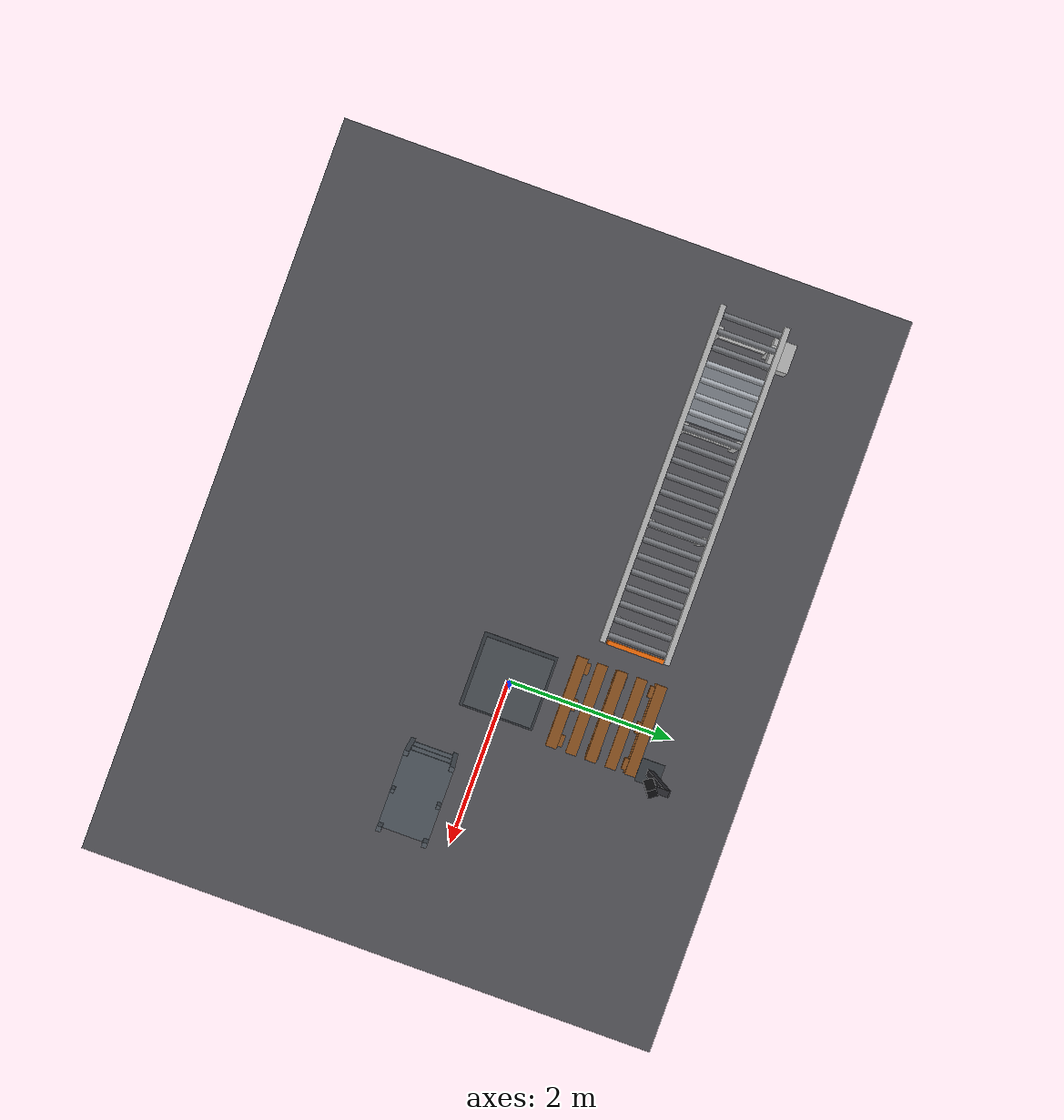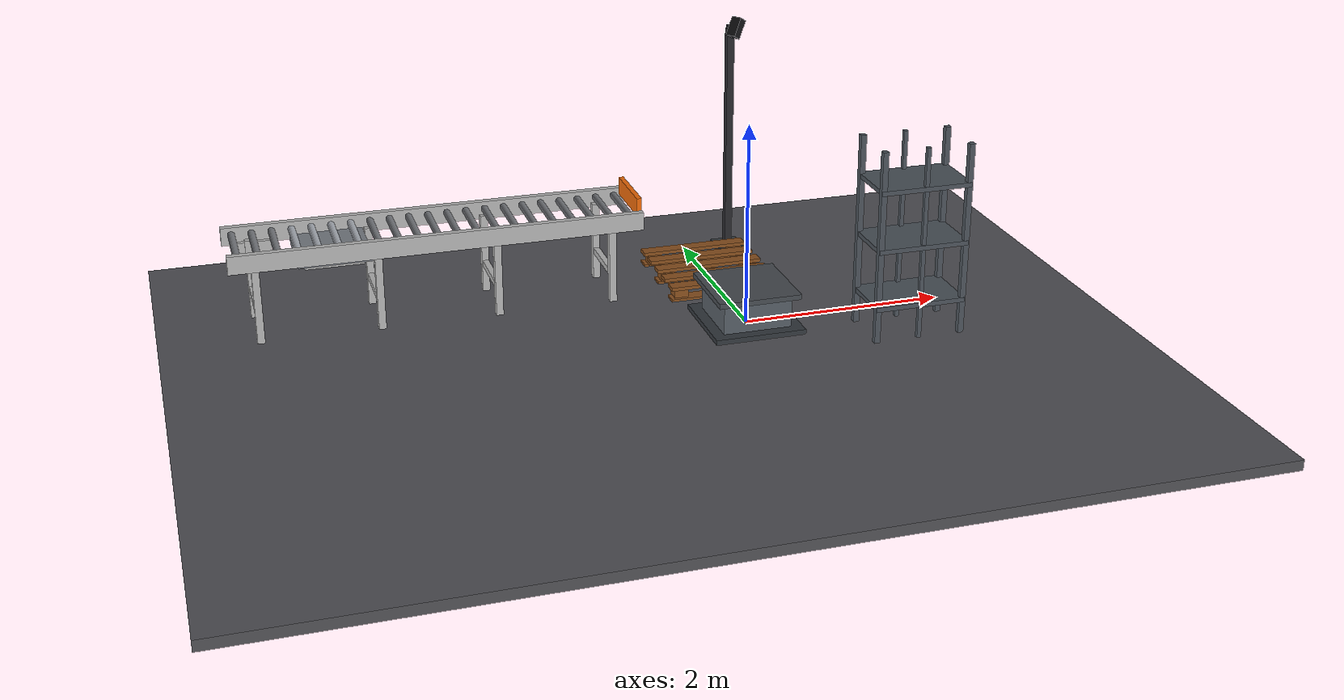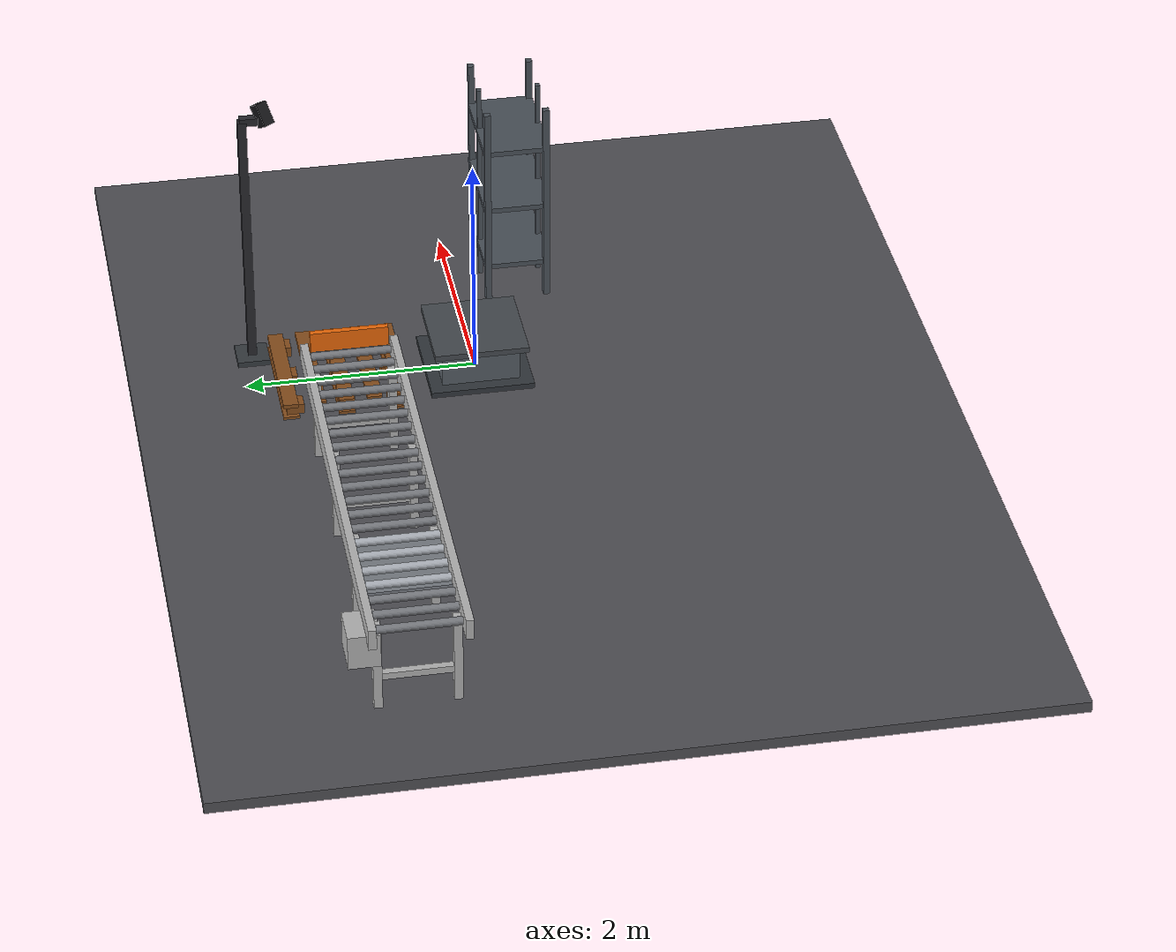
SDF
<?xml version="1.0"?>
<sdf version="1.8">
  <world name="ahead_workcell_v3_8_camera_pole">
    <plugin filename="ignition-gazebo-physics-system" name="ignition::gazebo::systems::Physics"/>
    <plugin filename="ignition-gazebo-user-commands-system" name="ignition::gazebo::systems::UserCommands"/>
    <plugin filename="ignition-gazebo-scene-broadcaster-system" name="ignition::gazebo::systems::SceneBroadcaster"/>
    <plugin filename="ignition-gazebo-sensors-system" name="ignition::gazebo::systems::Sensors"><render_engine>ogre2</render_engine></plugin>
    <gravity>0 0 -9.80665</gravity>
    <physics name="default_physics" type="ignored"><max_step_size>0.001</max_step_size><real_time_factor>1.0</real_time_factor></physics>
    <light type="directional" name="sun"><pose>0 0 8 0 0 0</pose><diffuse>0.8 0.8 0.8 1</diffuse><direction>-0.4 0.3 -1</direction></light>

    <model name="floor">
      <static>true</static>
      <link name="floor_link">
        <collision name="collision">
          <pose>-1.0 -0.5 -0.05 0 0 0</pose>
          <geometry><box><size>9.0 7.0 0.10</size></box></geometry>
        </collision>
        <visual name="visual">
          <pose>-1.0 -0.5 -0.05 0 0 0</pose>
          <geometry><box><size>9.0 7.0 0.10</size></box></geometry>
          <material>
            <ambient>0.22 0.22 0.23 1</ambient>
            <diffuse>0.32 0.32 0.34 1</diffuse>
          </material>
        </visual>
      </link>
    </model>

    <model name="conveyor_main">
      <static>true</static>

      <link name="conveyor_link">

        <collision name="collision">
          <pose>-2.80 1.20 0.75 0 0 0</pose>
          <geometry>
            <box><size>3.90 0.80 0.20</size></box>
          </geometry>

          <surface>
            <friction>
              <ode>
                <mu>0.7</mu>
                <mu2>150</mu2>
                <fdir1>0 1 0</fdir1>
              </ode>
            </friction>
          </surface>
        </collision>

        <visual name="rail_left">
          <pose>-2.80 0.82 0.84 0 0 0</pose>
          <geometry>
            <box><size>4.00 0.065 0.18</size></box>
          </geometry>
        </visual>

        <visual name="rail_right">
          <pose>-2.80 1.58 0.84 0 0 0</pose>
          <geometry>
            <box><size>4.00 0.065 0.18</size></box>
          </geometry>
        </visual>

      <visual name="roller_00">
        <pose>-4.700 1.20 0.86 1.57079632679 0 0</pose>
        <geometry>
          <cylinder>
            <radius>0.035</radius>
            <length>0.68</length>
          </cylinder>
        </geometry>
        <material>
          <ambient>0.28 0.29 0.31 1</ambient>
          <diffuse>0.47 0.48 0.50 1</diffuse>
        </material>
      </visual>

      <visual name="roller_01">
        <pose>-4.510 1.20 0.86 1.57079632679 0 0</pose>
        <geometry>
          <cylinder>
            <radius>0.035</radius>
            <length>0.68</length>
          </cylinder>
        </geometry>
        <material>
          <ambient>0.28 0.29 0.31 1</ambient>
          <diffuse>0.47 0.48 0.50 1</diffuse>
        </material>
      </visual>

      <visual name="roller_02">
        <pose>-4.320 1.20 0.86 1.57079632679 0 0</pose>
        <geometry>
          <cylinder>
            <radius>0.035</radius>
            <length>0.68</length>
          </cylinder>
        </geometry>
        <material>
          <ambient>0.28 0.29 0.31 1</ambient>
          <diffuse>0.47 0.48 0.50 1</diffuse>
        </material>
      </visual>

      <visual name="roller_03">
        <pose>-4.130 1.20 0.86 1.57079632679 0 0</pose>
        <geometry>
          <cylinder>
            <radius>0.035</radius>
            <length>0.68</length>
          </cylinder>
        </geometry>
        <material>
          <ambient>0.42 0.44 0.46 1</ambient>
          <diffuse>0.67 0.69 0.72 1</diffuse>
        </material>
      </visual>

      <visual name="roller_04">
        <pose>-3.940 1.20 0.86 1.57079632679 0 0</pose>
        <geometry>
          <cylinder>
            <radius>0.035</radius>
            <length>0.68</length>
          </cylinder>
        </geometry>
        <material>
          <ambient>0.42 0.44 0.46 1</ambient>
          <diffuse>0.67 0.69 0.72 1</diffuse>
        </material>
      </visual>

      <visual name="roller_05">
        <pose>-3.750 1.20 0.86 1.57079632679 0 0</pose>
        <geometry>
          <cylinder>
            <radius>0.035</radius>
            <length>0.68</length>
          </cylinder>
        </geometry>
        <material>
          <ambient>0.42 0.44 0.46 1</ambient>
          <diffuse>0.67 0.69 0.72 1</diffuse>
        </material>
      </visual>

      <visual name="roller_06">
        <pose>-3.560 1.20 0.86 1.57079632679 0 0</pose>
        <geometry>
          <cylinder>
            <radius>0.035</radius>
            <length>0.68</length>
          </cylinder>
        </geometry>
        <material>
          <ambient>0.42 0.44 0.46 1</ambient>
          <diffuse>0.67 0.69 0.72 1</diffuse>
        </material>
      </visual>

      <visual name="roller_07">
        <pose>-3.370 1.20 0.86 1.57079632679 0 0</pose>
        <geometry>
          <cylinder>
            <radius>0.035</radius>
            <length>0.68</length>
          </cylinder>
        </geometry>
        <material>
          <ambient>0.28 0.29 0.31 1</ambient>
          <diffuse>0.47 0.48 0.50 1</diffuse>
        </material>
      </visual>

      <visual name="roller_08">
        <pose>-3.180 1.20 0.86 1.57079632679 0 0</pose>
        <geometry>
          <cylinder>
            <radius>0.035</radius>
            <length>0.68</length>
          </cylinder>
        </geometry>
        <material>
          <ambient>0.28 0.29 0.31 1</ambient>
          <diffuse>0.47 0.48 0.50 1</diffuse>
        </material>
      </visual>

      <visual name="roller_09">
        <pose>-2.990 1.20 0.86 1.57079632679 0 0</pose>
        <geometry>
          <cylinder>
            <radius>0.035</radius>
            <length>0.68</length>
          </cylinder>
        </geometry>
        <material>
          <ambient>0.28 0.29 0.31 1</ambient>
          <diffuse>0.47 0.48 0.50 1</diffuse>
        </material>
      </visual>

      <visual name="roller_10">
        <pose>-2.800 1.20 0.86 1.57079632679 0 0</pose>
        <geometry>
          <cylinder>
            <radius>0.035</radius>
            <length>0.68</length>
          </cylinder>
        </geometry>
        <material>
          <ambient>0.28 0.29 0.31 1</ambient>
          <diffuse>0.47 0.48 0.50 1</diffuse>
        </material>
      </visual>

      <visual name="roller_11">
        <pose>-2.610 1.20 0.86 1.57079632679 0 0</pose>
        <geometry>
          <cylinder>
            <radius>0.035</radius>
            <length>0.68</length>
          </cylinder>
        </geometry>
        <material>
          <ambient>0.28 0.29 0.31 1</ambient>
          <diffuse>0.47 0.48 0.50 1</diffuse>
        </material>
      </visual>

      <visual name="roller_12">
        <pose>-2.420 1.20 0.86 1.57079632679 0 0</pose>
        <geometry>
          <cylinder>
            <radius>0.035</radius>
            <length>0.68</length>
          </cylinder>
        </geometry>
        <material>
          <ambient>0.28 0.29 0.31 1</ambient>
          <diffuse>0.47 0.48 0.50 1</diffuse>
        </material>
      </visual>

      <visual name="roller_13">
        <pose>-2.230 1.20 0.86 1.57079632679 0 0</pose>
        <geometry>
          <cylinder>
            <radius>0.035</radius>
            <length>0.68</length>
          </cylinder>
        </geometry>
        <material>
          <ambient>0.28 0.29 0.31 1</ambient>
          <diffuse>0.47 0.48 0.50 1</diffuse>
        </material>
      </visual>

      <visual name="roller_14">
        <pose>-2.040 1.20 0.86 1.57079632679 0 0</pose>
        <geometry>
          <cylinder>
            <radius>0.035</radius>
            <length>0.68</length>
          </cylinder>
        </geometry>
        <material>
          <ambient>0.28 0.29 0.31 1</ambient>
          <diffuse>0.47 0.48 0.50 1</diffuse>
        </material>
      </visual>

      <visual name="roller_15">
        <pose>-1.850 1.20 0.86 1.57079632679 0 0</pose>
        <geometry>
          <cylinder>
            <radius>0.035</radius>
            <length>0.68</length>
          </cylinder>
        </geometry>
        <material>
          <ambient>0.28 0.29 0.31 1</ambient>
          <diffuse>0.47 0.48 0.50 1</diffuse>
        </material>
      </visual>

      <visual name="roller_16">
        <pose>-1.660 1.20 0.86 1.57079632679 0 0</pose>
        <geometry>
          <cylinder>
            <radius>0.035</radius>
            <length>0.68</length>
          </cylinder>
        </geometry>
        <material>
          <ambient>0.28 0.29 0.31 1</ambient>
          <diffuse>0.47 0.48 0.50 1</diffuse>
        </material>
      </visual>

      <visual name="roller_17">
        <pose>-1.470 1.20 0.86 1.57079632679 0 0</pose>
        <geometry>
          <cylinder>
            <radius>0.035</radius>
            <length>0.68</length>
          </cylinder>
        </geometry>
        <material>
          <ambient>0.28 0.29 0.31 1</ambient>
          <diffuse>0.47 0.48 0.50 1</diffuse>
        </material>
      </visual>

      <visual name="roller_18">
        <pose>-1.280 1.20 0.86 1.57079632679 0 0</pose>
        <geometry>
          <cylinder>
            <radius>0.035</radius>
            <length>0.68</length>
          </cylinder>
        </geometry>
        <material>
          <ambient>0.28 0.29 0.31 1</ambient>
          <diffuse>0.47 0.48 0.50 1</diffuse>
        </material>
      </visual>

      <visual name="roller_19">
        <pose>-1.090 1.20 0.86 1.57079632679 0 0</pose>
        <geometry>
          <cylinder>
            <radius>0.035</radius>
            <length>0.68</length>
          </cylinder>
        </geometry>
        <material>
          <ambient>0.28 0.29 0.31 1</ambient>
          <diffuse>0.47 0.48 0.50 1</diffuse>
        </material>
      </visual>

      <visual name="roller_20">
        <pose>-0.900 1.20 0.86 1.57079632679 0 0</pose>
        <geometry>
          <cylinder>
            <radius>0.035</radius>
            <length>0.68</length>
          </cylinder>
        </geometry>
        <material>
          <ambient>0.28 0.29 0.31 1</ambient>
          <diffuse>0.47 0.48 0.50 1</diffuse>
        </material>
      </visual>

      <visual name="leg_l_0">
        <pose>-4.55 0.88 0.40 0 0 0</pose>
        <geometry>
          <box><size>0.07 0.07 0.80</size></box>
        </geometry>
      </visual>

      <visual name="leg_r_0">
        <pose>-4.55 1.52 0.40 0 0 0</pose>
        <geometry>
          <box><size>0.07 0.07 0.80</size></box>
        </geometry>
      </visual>

      <visual name="crossbar_0">
        <pose>-4.55 1.20 0.30 0 0 0</pose>
        <geometry>
          <box><size>0.06 0.68 0.06</size></box>
        </geometry>
      </visual>

      <visual name="leg_l_1">
        <pose>-3.4 0.88 0.40 0 0 0</pose>
        <geometry>
          <box><size>0.07 0.07 0.80</size></box>
        </geometry>
      </visual>

      <visual name="leg_r_1">
        <pose>-3.4 1.52 0.40 0 0 0</pose>
        <geometry>
          <box><size>0.07 0.07 0.80</size></box>
        </geometry>
      </visual>

      <visual name="crossbar_1">
        <pose>-3.4 1.20 0.30 0 0 0</pose>
        <geometry>
          <box><size>0.06 0.68 0.06</size></box>
        </geometry>
      </visual>

      <visual name="leg_l_2">
        <pose>-2.25 0.88 0.40 0 0 0</pose>
        <geometry>
          <box><size>0.07 0.07 0.80</size></box>
        </geometry>
      </visual>

      <visual name="leg_r_2">
        <pose>-2.25 1.52 0.40 0 0 0</pose>
        <geometry>
          <box><size>0.07 0.07 0.80</size></box>
        </geometry>
      </visual>

      <visual name="crossbar_2">
        <pose>-2.25 1.20 0.30 0 0 0</pose>
        <geometry>
          <box><size>0.06 0.68 0.06</size></box>
        </geometry>
      </visual>

      <visual name="leg_l_3">
        <pose>-1.1 0.88 0.40 0 0 0</pose>
        <geometry>
          <box><size>0.07 0.07 0.80</size></box>
        </geometry>
      </visual>

      <visual name="leg_r_3">
        <pose>-1.1 1.52 0.40 0 0 0</pose>
        <geometry>
          <box><size>0.07 0.07 0.80</size></box>
        </geometry>
      </visual>

      <visual name="crossbar_3">
        <pose>-1.1 1.20 0.30 0 0 0</pose>
        <geometry>
          <box><size>0.06 0.68 0.06</size></box>
        </geometry>
      </visual>

        <!-- Pick stopper -->
        <visual name="pick_stopper">
          <pose>-0.82 1.20 0.96 0 0 0</pose>
          <geometry>
            <box><size>0.05 0.66 0.18</size></box>
          </geometry>
          <material>
            <ambient>0.72 0.27 0.02 1</ambient>
            <diffuse>0.95 0.42 0.03 1</diffuse>
          </material>
        </visual>

        <!-- drive unit -->
        <visual name="drive_motor">
          <pose>-4.50 1.63 0.63 0 0 0</pose>
          <geometry>
            <box><size>0.34 0.26 0.30</size></box>
          </geometry>
        </visual>

      </link>

      <plugin filename="libignition-gazebo-track-controller-system.so"
              name="gz::sim::systems::TrackController">
        <link>conveyor_link</link>
      </plugin>

    </model>

    <model name="inline_scale">
      <static>true</static>

      <link name="scale_link">

        <visual name="weighing_frame">
          <pose>-3.80 1.20 0.755 0 0 0</pose>
          <geometry>
            <box><size>0.70 0.70 0.085</size></box>
          </geometry>
          <material>
            <ambient>0.25 0.26 0.28 1</ambient>
            <diffuse>0.48 0.50 0.53 1</diffuse>
          </material>
        </visual>

        <visual name="loadcell_base">
          <pose>-3.80 1.20 0.685 0 0 0</pose>
          <geometry>
            <box><size>0.56 0.54 0.045</size></box>
          </geometry>
        </visual>

      </link>
    </model>

    <model name="hdr50_pedestal">
      <static>true</static>

      <pose>0 0 0 0 0 0</pose>

      <link name="pedestal_link">

        <!-- floor mounting plate -->
        <collision name="base_plate_collision">
          <pose>0 0 0.025 0 0 0</pose>
          <geometry>
            <box><size>0.90 0.90 0.05</size></box>
          </geometry>
        </collision>

        <visual name="base_plate_visual">
          <pose>0 0 0.025 0 0 0</pose>
          <geometry>
            <box><size>0.90 0.90 0.05</size></box>
          </geometry>
          <material>
            <ambient>0.10 0.11 0.12 1</ambient>
            <diffuse>0.20 0.22 0.24 1</diffuse>
          </material>
        </visual>

        <!-- pedestal column -->
        <collision name="column_collision">
          <pose>0 0 0.205 0 0 0</pose>
          <geometry>
            <box><size>0.68 0.68 0.31</size></box>
          </geometry>
        </collision>

        <visual name="column_visual">
          <pose>0 0 0.205 0 0 0</pose>
          <geometry>
            <box><size>0.68 0.68 0.31</size></box>
          </geometry>
          <material>
            <ambient>0.18 0.20 0.22 1</ambient>
            <diffuse>0.34 0.37 0.40 1</diffuse>
          </material>
        </visual>

        <!-- robot mounting plate -->
        <collision name="top_plate_collision">
          <pose>0 0 0.375 0 0 0</pose>
          <geometry>
            <box><size>0.82 0.82 0.05</size></box>
          </geometry>
        </collision>

        <visual name="top_plate_visual">
          <pose>0 0 0.375 0 0 0</pose>
          <geometry>
            <box><size>0.82 0.82 0.05</size></box>
          </geometry>
          <material>
            <ambient>0.12 0.13 0.14 1</ambient>
            <diffuse>0.28 0.30 0.32 1</diffuse>
          </material>
        </visual>

      </link>
    </model>

    <model name="pallet_main">
      <static>true</static>
      <pose>0 1.20 0 0 0 0</pose>
      <link name="pallet_link">

      <collision name="bottom_runner_0_collision">
        <pose>0 -0.48 0.0125 0 0 0</pose>
        <geometry><box><size>1.1 0.14 0.025</size></box></geometry>
      </collision>
      <visual name="bottom_runner_0_visual">
        <pose>0 -0.48 0.0125 0 0 0</pose>
        <geometry><box><size>1.1 0.14 0.025</size></box></geometry>
        <material>
          <ambient>0.34 0.20 0.08 1</ambient>
          <diffuse>0.55 0.32 0.12 1</diffuse>
        </material>
      </visual>

      <collision name="bottom_runner_1_collision">
        <pose>0 0.0 0.0125 0 0 0</pose>
        <geometry><box><size>1.1 0.14 0.025</size></box></geometry>
      </collision>
      <visual name="bottom_runner_1_visual">
        <pose>0 0.0 0.0125 0 0 0</pose>
        <geometry><box><size>1.1 0.14 0.025</size></box></geometry>
        <material>
          <ambient>0.34 0.20 0.08 1</ambient>
          <diffuse>0.55 0.32 0.12 1</diffuse>
        </material>
      </visual>

      <collision name="bottom_runner_2_collision">
        <pose>0 0.48 0.0125 0 0 0</pose>
        <geometry><box><size>1.1 0.14 0.025</size></box></geometry>
      </collision>
      <visual name="bottom_runner_2_visual">
        <pose>0 0.48 0.0125 0 0 0</pose>
        <geometry><box><size>1.1 0.14 0.025</size></box></geometry>
        <material>
          <ambient>0.34 0.20 0.08 1</ambient>
          <diffuse>0.55 0.32 0.12 1</diffuse>
        </material>
      </visual>

      <collision name="support_block_0_0_collision">
        <pose>-0.44 -0.44 0.07 0 0 0</pose>
        <geometry><box><size>0.14 0.15 0.09</size></box></geometry>
      </collision>
      <visual name="support_block_0_0_visual">
        <pose>-0.44 -0.44 0.07 0 0 0</pose>
        <geometry><box><size>0.14 0.15 0.09</size></box></geometry>
        <material>
          <ambient>0.34 0.20 0.08 1</ambient>
          <diffuse>0.55 0.32 0.12 1</diffuse>
        </material>
      </visual>

      <collision name="support_block_0_1_collision">
        <pose>-0.44 0.0 0.07 0 0 0</pose>
        <geometry><box><size>0.14 0.15 0.09</size></box></geometry>
      </collision>
      <visual name="support_block_0_1_visual">
        <pose>-0.44 0.0 0.07 0 0 0</pose>
        <geometry><box><size>0.14 0.15 0.09</size></box></geometry>
        <material>
          <ambient>0.34 0.20 0.08 1</ambient>
          <diffuse>0.55 0.32 0.12 1</diffuse>
        </material>
      </visual>

      <collision name="support_block_0_2_collision">
        <pose>-0.44 0.44 0.07 0 0 0</pose>
        <geometry><box><size>0.14 0.15 0.09</size></box></geometry>
      </collision>
      <visual name="support_block_0_2_visual">
        <pose>-0.44 0.44 0.07 0 0 0</pose>
        <geometry><box><size>0.14 0.15 0.09</size></box></geometry>
        <material>
          <ambient>0.34 0.20 0.08 1</ambient>
          <diffuse>0.55 0.32 0.12 1</diffuse>
        </material>
      </visual>

      <collision name="support_block_1_0_collision">
        <pose>0.0 -0.44 0.07 0 0 0</pose>
        <geometry><box><size>0.14 0.15 0.09</size></box></geometry>
      </collision>
      <visual name="support_block_1_0_visual">
        <pose>0.0 -0.44 0.07 0 0 0</pose>
        <geometry><box><size>0.14 0.15 0.09</size></box></geometry>
        <material>
          <ambient>0.34 0.20 0.08 1</ambient>
          <diffuse>0.55 0.32 0.12 1</diffuse>
        </material>
      </visual>

      <collision name="support_block_1_1_collision">
        <pose>0.0 0.0 0.07 0 0 0</pose>
        <geometry><box><size>0.14 0.15 0.09</size></box></geometry>
      </collision>
      <visual name="support_block_1_1_visual">
        <pose>0.0 0.0 0.07 0 0 0</pose>
        <geometry><box><size>0.14 0.15 0.09</size></box></geometry>
        <material>
          <ambient>0.34 0.20 0.08 1</ambient>
          <diffuse>0.55 0.32 0.12 1</diffuse>
        </material>
      </visual>

      <collision name="support_block_1_2_collision">
        <pose>0.0 0.44 0.07 0 0 0</pose>
        <geometry><box><size>0.14 0.15 0.09</size></box></geometry>
      </collision>
      <visual name="support_block_1_2_visual">
        <pose>0.0 0.44 0.07 0 0 0</pose>
        <geometry><box><size>0.14 0.15 0.09</size></box></geometry>
        <material>
          <ambient>0.34 0.20 0.08 1</ambient>
          <diffuse>0.55 0.32 0.12 1</diffuse>
        </material>
      </visual>

      <collision name="support_block_2_0_collision">
        <pose>0.44 -0.44 0.07 0 0 0</pose>
        <geometry><box><size>0.14 0.15 0.09</size></box></geometry>
      </collision>
      <visual name="support_block_2_0_visual">
        <pose>0.44 -0.44 0.07 0 0 0</pose>
        <geometry><box><size>0.14 0.15 0.09</size></box></geometry>
        <material>
          <ambient>0.34 0.20 0.08 1</ambient>
          <diffuse>0.55 0.32 0.12 1</diffuse>
        </material>
      </visual>

      <collision name="support_block_2_1_collision">
        <pose>0.44 0.0 0.07 0 0 0</pose>
        <geometry><box><size>0.14 0.15 0.09</size></box></geometry>
      </collision>
      <visual name="support_block_2_1_visual">
        <pose>0.44 0.0 0.07 0 0 0</pose>
        <geometry><box><size>0.14 0.15 0.09</size></box></geometry>
        <material>
          <ambient>0.34 0.20 0.08 1</ambient>
          <diffuse>0.55 0.32 0.12 1</diffuse>
        </material>
      </visual>

      <collision name="support_block_2_2_collision">
        <pose>0.44 0.44 0.07 0 0 0</pose>
        <geometry><box><size>0.14 0.15 0.09</size></box></geometry>
      </collision>
      <visual name="support_block_2_2_visual">
        <pose>0.44 0.44 0.07 0 0 0</pose>
        <geometry><box><size>0.14 0.15 0.09</size></box></geometry>
        <material>
          <ambient>0.34 0.20 0.08 1</ambient>
          <diffuse>0.55 0.32 0.12 1</diffuse>
        </material>
      </visual>

      <collision name="top_board_0_collision">
        <pose>0 -0.484 0.1325 0 0 0</pose>
        <geometry><box><size>1.1 0.13 0.035</size></box></geometry>
      </collision>
      <visual name="top_board_0_visual">
        <pose>0 -0.484 0.1325 0 0 0</pose>
        <geometry><box><size>1.1 0.13 0.035</size></box></geometry>
        <material>
          <ambient>0.34 0.20 0.08 1</ambient>
          <diffuse>0.55 0.32 0.12 1</diffuse>
        </material>
      </visual>

      <collision name="top_board_1_collision">
        <pose>0 -0.242 0.1325 0 0 0</pose>
        <geometry><box><size>1.1 0.13 0.035</size></box></geometry>
      </collision>
      <visual name="top_board_1_visual">
        <pose>0 -0.242 0.1325 0 0 0</pose>
        <geometry><box><size>1.1 0.13 0.035</size></box></geometry>
        <material>
          <ambient>0.34 0.20 0.08 1</ambient>
          <diffuse>0.55 0.32 0.12 1</diffuse>
        </material>
      </visual>

      <collision name="top_board_2_collision">
        <pose>0 0.0 0.1325 0 0 0</pose>
        <geometry><box><size>1.1 0.13 0.035</size></box></geometry>
      </collision>
      <visual name="top_board_2_visual">
        <pose>0 0.0 0.1325 0 0 0</pose>
        <geometry><box><size>1.1 0.13 0.035</size></box></geometry>
        <material>
          <ambient>0.34 0.20 0.08 1</ambient>
          <diffuse>0.55 0.32 0.12 1</diffuse>
        </material>
      </visual>

      <collision name="top_board_3_collision">
        <pose>0 0.242 0.1325 0 0 0</pose>
        <geometry><box><size>1.1 0.13 0.035</size></box></geometry>
      </collision>
      <visual name="top_board_3_visual">
        <pose>0 0.242 0.1325 0 0 0</pose>
        <geometry><box><size>1.1 0.13 0.035</size></box></geometry>
        <material>
          <ambient>0.34 0.20 0.08 1</ambient>
          <diffuse>0.55 0.32 0.12 1</diffuse>
        </material>
      </visual>

      <collision name="top_board_4_collision">
        <pose>0 0.484 0.1325 0 0 0</pose>
        <geometry><box><size>1.1 0.13 0.035</size></box></geometry>
      </collision>
      <visual name="top_board_4_visual">
        <pose>0 0.484 0.1325 0 0 0</pose>
        <geometry><box><size>1.1 0.13 0.035</size></box></geometry>
        <material>
          <ambient>0.34 0.20 0.08 1</ambient>
          <diffuse>0.55 0.32 0.12 1</diffuse>
        </material>
      </visual>

      </link>
    </model>

    <model name="buffer_rack">
      <static>true</static>

      <pose>1.45 -0.55 0 0 0 0</pose>

      <link name="rack_link">

        <collision name="post_fl_collision">
          <pose>-0.43 -0.26 0.95 0 0 0</pose>
          <geometry><box><size>0.055 0.055 1.90</size></box></geometry>
        </collision>

        <visual name="post_fl_visual">
          <pose>-0.43 -0.26 0.95 0 0 0</pose>
          <geometry><box><size>0.055 0.055 1.90</size></box></geometry>
          <material>
            <ambient>0.15 0.17 0.19 1</ambient>
            <diffuse>0.30 0.33 0.36 1</diffuse>
          </material>
        </visual>

        <collision name="post_fr_collision">
          <pose>0.43 -0.26 0.95 0 0 0</pose>
          <geometry><box><size>0.055 0.055 1.90</size></box></geometry>
        </collision>

        <visual name="post_fr_visual">
          <pose>0.43 -0.26 0.95 0 0 0</pose>
          <geometry><box><size>0.055 0.055 1.90</size></box></geometry>
          <material>
            <ambient>0.15 0.17 0.19 1</ambient>
            <diffuse>0.30 0.33 0.36 1</diffuse>
          </material>
        </visual>

        <collision name="post_bl_collision">
          <pose>-0.43 0.26 0.95 0 0 0</pose>
          <geometry><box><size>0.055 0.055 1.90</size></box></geometry>
        </collision>

        <visual name="post_bl_visual">
          <pose>-0.43 0.26 0.95 0 0 0</pose>
          <geometry><box><size>0.055 0.055 1.90</size></box></geometry>
          <material>
            <ambient>0.15 0.17 0.19 1</ambient>
            <diffuse>0.30 0.33 0.36 1</diffuse>
          </material>
        </visual>

        <collision name="post_br_collision">
          <pose>0.43 0.26 0.95 0 0 0</pose>
          <geometry><box><size>0.055 0.055 1.90</size></box></geometry>
        </collision>

        <visual name="post_br_visual">
          <pose>0.43 0.26 0.95 0 0 0</pose>
          <geometry><box><size>0.055 0.055 1.90</size></box></geometry>
          <material>
            <ambient>0.15 0.17 0.19 1</ambient>
            <diffuse>0.30 0.33 0.36 1</diffuse>
          </material>
        </visual>

        <collision name="divider_front_collision">
          <pose>0 -0.26 0.95 0 0 0</pose>
          <geometry><box><size>0.04 0.04 1.90</size></box></geometry>
        </collision>

        <visual name="divider_front_visual">
          <pose>0 -0.26 0.95 0 0 0</pose>
          <geometry><box><size>0.04 0.04 1.90</size></box></geometry>
          <material>
            <ambient>0.15 0.17 0.19 1</ambient>
            <diffuse>0.30 0.33 0.36 1</diffuse>
          </material>
        </visual>

        <collision name="divider_back_collision">
          <pose>0 0.26 0.95 0 0 0</pose>
          <geometry><box><size>0.04 0.04 1.90</size></box></geometry>
        </collision>

        <visual name="divider_back_visual">
          <pose>0 0.26 0.95 0 0 0</pose>
          <geometry><box><size>0.04 0.04 1.90</size></box></geometry>
          <material>
            <ambient>0.15 0.17 0.19 1</ambient>
            <diffuse>0.30 0.33 0.36 1</diffuse>
          </material>
        </visual>

        <collision name="shelf_0_collision">
          <pose>0 0 0.34 0 0 0</pose>
          <geometry><box><size>0.90 0.58 0.045</size></box></geometry>
        </collision>

        <visual name="shelf_0_visual">
          <pose>0 0 0.34 0 0 0</pose>
          <geometry><box><size>0.90 0.58 0.045</size></box></geometry>
          <material>
            <ambient>0.15 0.17 0.19 1</ambient>
            <diffuse>0.30 0.33 0.36 1</diffuse>
          </material>
        </visual>

        <collision name="shelf_1_collision">
          <pose>0 0 0.92 0 0 0</pose>
          <geometry><box><size>0.90 0.58 0.045</size></box></geometry>
        </collision>

        <visual name="shelf_1_visual">
          <pose>0 0 0.92 0 0 0</pose>
          <geometry><box><size>0.90 0.58 0.045</size></box></geometry>
          <material>
            <ambient>0.15 0.17 0.19 1</ambient>
            <diffuse>0.30 0.33 0.36 1</diffuse>
          </material>
        </visual>

        <collision name="shelf_2_collision">
          <pose>0 0 1.5 0 0 0</pose>
          <geometry><box><size>0.90 0.58 0.045</size></box></geometry>
        </collision>

        <visual name="shelf_2_visual">
          <pose>0 0 1.5 0 0 0</pose>
          <geometry><box><size>0.90 0.58 0.045</size></box></geometry>
          <material>
            <ambient>0.15 0.17 0.19 1</ambient>
            <diffuse>0.30 0.33 0.36 1</diffuse>
          </material>
        </visual>

      </link>

    </model>

    <model name="camera_1_cctv_base">
      <static>true</static>

      <link name="camera_1_link">

        <!-- Floor base -->
        <collision name="pole_base_collision">
          <pose>0.45 1.9 0.025 0 0 0</pose>
          <geometry>
            <box><size>0.28 0.28 0.05</size></box>
          </geometry>
        </collision>

        <visual name="pole_base">
          <pose>0.45 1.9 0.025 0 0 0</pose>
          <geometry>
            <box><size>0.28 0.28 0.05</size></box>
          </geometry>
          <material>
            <ambient>0.10 0.11 0.12 1</ambient>
            <diffuse>0.22 0.24 0.26 1</diffuse>
          </material>
        </visual>

        <!-- Independent CCTV pole -->
        <collision name="camera_pole_collision">
          <pose>0.45 1.9 1.20 0 0 0</pose>
          <geometry>
            <box><size>0.075 0.075 2.40</size></box>
          </geometry>
        </collision>

        <visual name="camera_pole">
          <pose>0.45 1.9 1.20 0 0 0</pose>
          <geometry>
            <box><size>0.075 0.075 2.40</size></box>
          </geometry>
          <material>
            <ambient>0.08 0.08 0.09 1</ambient>
            <diffuse>0.16 0.16 0.18 1</diffuse>
          </material>
        </visual>

        <!-- Short bracket only -->
        <visual name="camera_bracket">
          <pose>0.45 1.81 2.40 0 0 0</pose>
          <geometry>
            <box><size>0.07 0.22 0.07</size></box>
          </geometry>
          <material>
            <ambient>0.08 0.08 0.09 1</ambient>
            <diffuse>0.16 0.16 0.18 1</diffuse>
          </material>
        </visual>

        <!-- CCTV housing -->
        <visual name="camera_housing">
          <pose>0.45 1.72 2.45
                0 1.024207 -2.535355</pose>

          <geometry>
            <box><size>0.20 0.11 0.095</size></box>
          </geometry>

          <material>
            <ambient>0.025 0.025 0.03 1</ambient>
            <diffuse>0.07 0.07 0.08 1</diffuse>
          </material>
        </visual>

        <!-- Lens -->
        <visual name="camera_lens">
          <pose>0.45 1.72 2.45
                0 1.024207 -2.535355</pose>

          <geometry>
            <cylinder>
              <radius>0.032</radius>
              <length>0.025</length>
            </cylinder>
          </geometry>

          <material>
            <ambient>0.02 0.08 0.13 1</ambient>
            <diffuse>0.03 0.15 0.25 1</diffuse>
          </material>
        </visual>

        <sensor name="cctv_camera_1" type="camera">

          <pose>0.45 1.72 2.45
                0 1.024207 -2.535355</pose>

          <always_on>true</always_on>
          <update_rate>15</update_rate>

          <!-- 기존 perception 호환 유지 -->
          <topic>/pac/top_camera/image</topic>

          <camera>
            <horizontal_fov>1.40</horizontal_fov>

            <image>
              <width>1280</width>
              <height>720</height>
              <format>R8G8B8</format>
            </image>

            <clip>
              <near>0.10</near>
              <far>8.0</far>
            </clip>

          </camera>

        </sensor>

      </link>
    </model>

    <!-- HDP160-31 is spawned separately only after verified description is available. -->
  </world>
</sdf>
